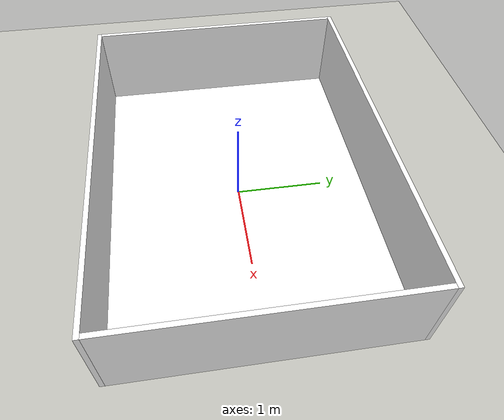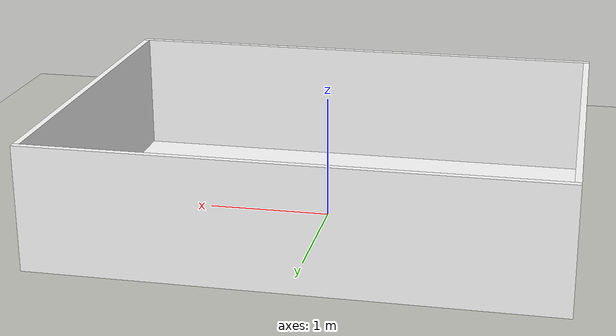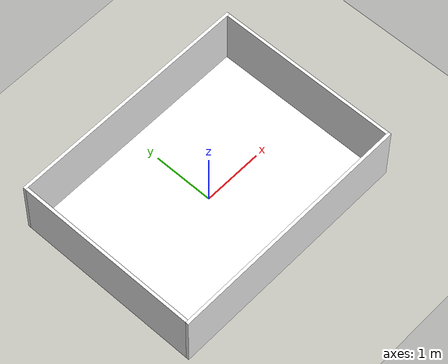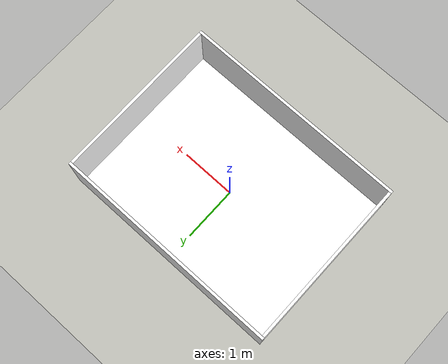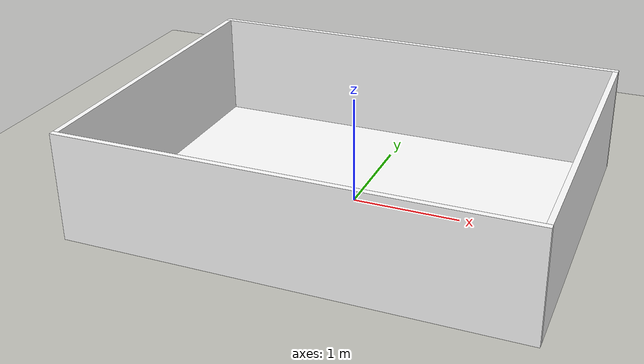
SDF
<?xml version="1.0"?>
<sdf version="1.9">
  <world name="line_track">
    <physics name="1ms" type="ignored">
      <max_step_size>0.001</max_step_size>
      <real_time_factor>1.0</real_time_factor>
    </physics>
    <plugin filename="gz-sim-physics-system" name="gz::sim::systems::Physics"/>
    <plugin filename="gz-sim-user-commands-system" name="gz::sim::systems::UserCommands"/>
    <plugin filename="gz-sim-scene-broadcaster-system" name="gz::sim::systems::SceneBroadcaster"/>
    <plugin filename="gz-sim-sensors-system" name="gz::sim::systems::Sensors">
      <render_engine>ogre2</render_engine>
    </plugin>
    <plugin filename="gz-sim-imu-system" name="gz::sim::systems::Imu"/>

    <scene>
      <ambient>0.6 0.6 0.6 1</ambient>
      <background>0.8 0.8 0.8 1</background>
      <grid>false</grid>
    </scene>

    <model name="line_track">
      <static>true</static>
      <link name="link">
        <visual name="floor_v">
          <pose>0 0 0.0005 0 0 0</pose>
          <geometry><box><size>4.0 3.0 0.001</size></box></geometry>
          <material>
            <ambient>1 1 1 1</ambient>
            <diffuse>1 1 1 1</diffuse>
            <pbr><metal>
              <albedo_map>textures/line_track.png</albedo_map>
              <roughness>0.9</roughness>
              <metalness>0</metalness>
            </metal></pbr>
          </material>
        </visual>
      </link>
    </model>

    <light type="directional" name="sun">
      <cast_shadows>true</cast_shadows>
      <pose>0 0 10 0 0 0</pose>
      <diffuse>0.9 0.9 0.9 1</diffuse>
      <specular>0.2 0.2 0.2 1</specular>
      <direction>-0.5 0.1 -0.9</direction>
    </light>

    <model name="ground_plane">
      <static>true</static>
      <link name="link">
        <collision name="collision">
          <geometry><plane><normal>0 0 1</normal><size>20 20</size></plane></geometry>
        </collision>
        <visual name="visual">
          <geometry><plane><normal>0 0 1</normal><size>20 20</size></plane></geometry>
          <material><ambient>0.75 0.75 0.72 1</ambient><diffuse>0.75 0.75 0.72 1</diffuse></material>
        </visual>
      </link>
    </model>

    <model name="walls">
      <static>true</static>
      <link name="link">
        <collision name="north_c"><pose>0 1.525 0.5 0 0 0</pose><geometry><box><size>4.1 0.05 1.0</size></box></geometry></collision>
        <visual name="north_v"><pose>0 1.525 0.5 0 0 0</pose><geometry><box><size>4.1 0.05 1.0</size></box></geometry><material><ambient>1 1 1 1</ambient><diffuse>1 1 1 1</diffuse><pbr><metal><albedo_map>textures/wall_north.png</albedo_map><roughness>0.9</roughness><metalness>0</metalness></metal></pbr></material></visual>
        <collision name="south_c"><pose>0 -1.525 0.5 0 0 0</pose><geometry><box><size>4.1 0.05 1.0</size></box></geometry></collision>
        <visual name="south_v"><pose>0 -1.525 0.5 0 0 0</pose><geometry><box><size>4.1 0.05 1.0</size></box></geometry><material><ambient>1 1 1 1</ambient><diffuse>1 1 1 1</diffuse><pbr><metal><albedo_map>textures/wall_south.png</albedo_map><roughness>0.9</roughness><metalness>0</metalness></metal></pbr></material></visual>
        <collision name="east_c"><pose>2.025 0 0.5 0 0 0</pose><geometry><box><size>0.05 3.0 1.0</size></box></geometry></collision>
        <visual name="east_v"><pose>2.025 0 0.5 0 0 0</pose><geometry><box><size>0.05 3.0 1.0</size></box></geometry><material><ambient>1 1 1 1</ambient><diffuse>1 1 1 1</diffuse><pbr><metal><albedo_map>textures/wall_east.png</albedo_map><roughness>0.9</roughness><metalness>0</metalness></metal></pbr></material></visual>
        <collision name="west_c"><pose>-2.025 0 0.5 0 0 0</pose><geometry><box><size>0.05 3.0 1.0</size></box></geometry></collision>
        <visual name="west_v"><pose>-2.025 0 0.5 0 0 0</pose><geometry><box><size>0.05 3.0 1.0</size></box></geometry><material><ambient>1 1 1 1</ambient><diffuse>1 1 1 1</diffuse><pbr><metal><albedo_map>textures/wall_west.png</albedo_map><roughness>0.9</roughness><metalness>0</metalness></metal></pbr></material></visual>
      </link>
    </model>

  </world>
</sdf>
